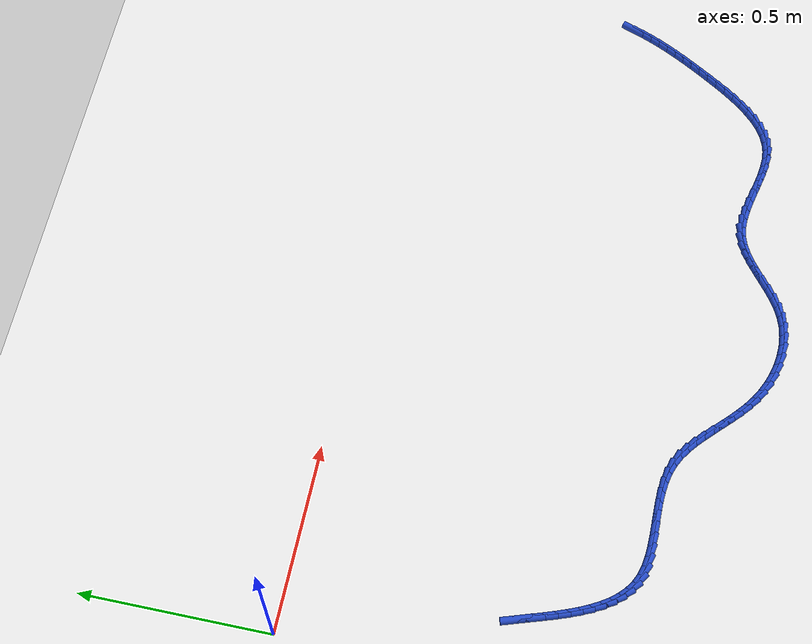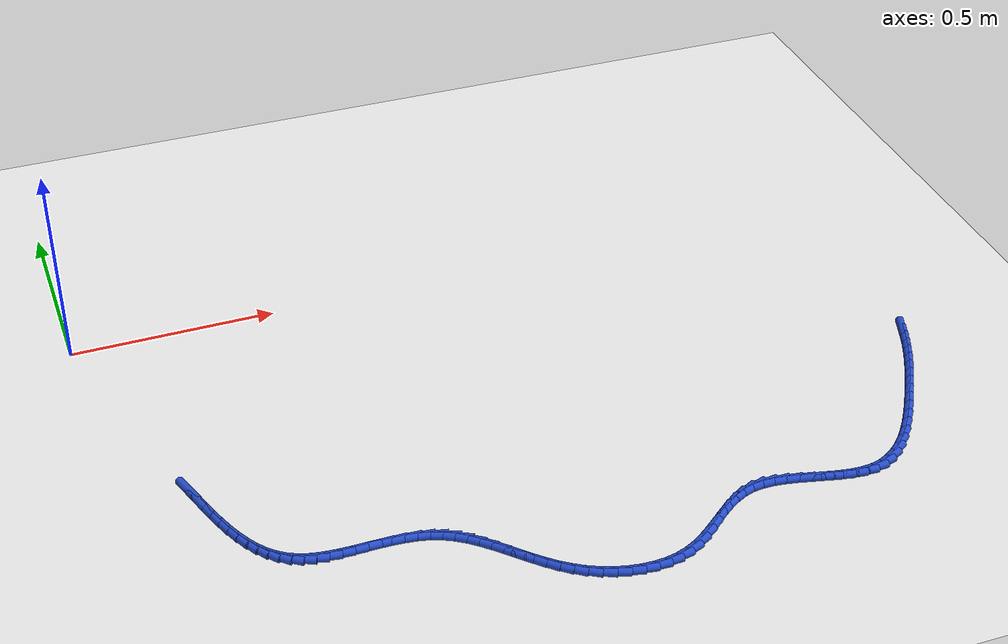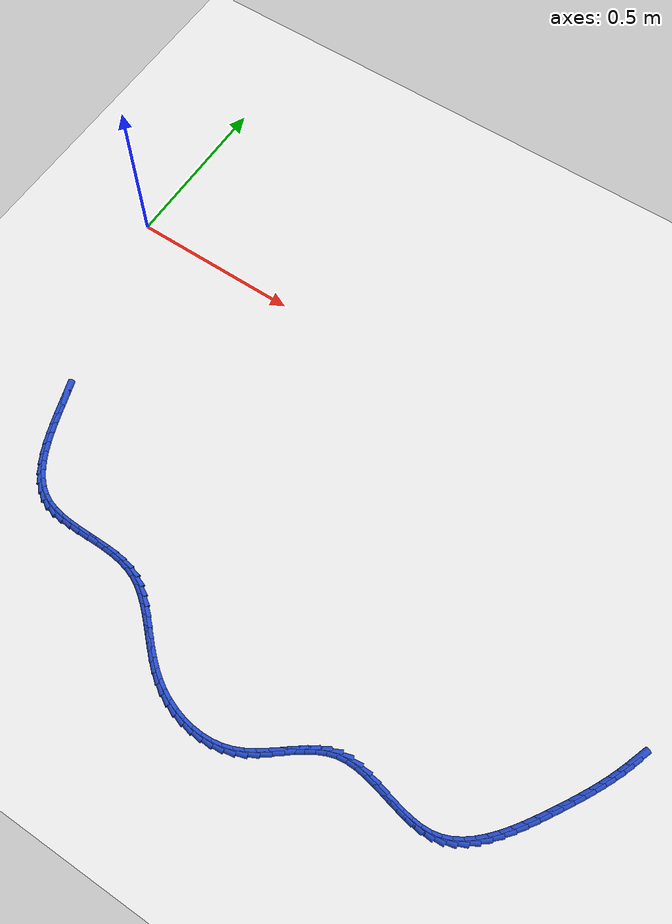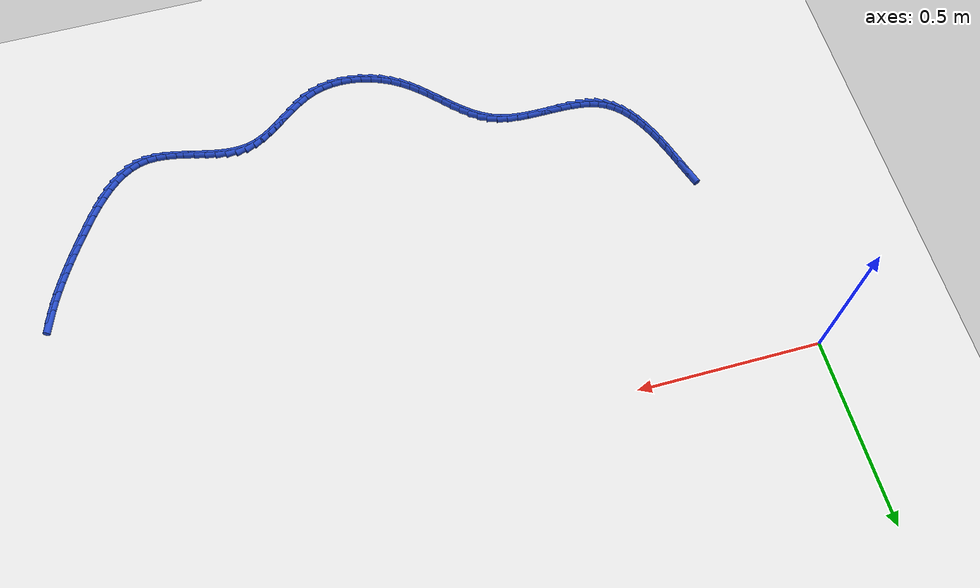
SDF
<sdf version="1.6">
 <world name="default">
  <model name="ground_plane">
   <static>1</static>
   <link name="link">
    <collision name="collision">
     <geometry><plane><normal>0 0 1</normal><size>100 100</size></plane></geometry>
     <surface><friction><ode><mu>100</mu><mu2>50</mu2></ode></friction></surface>
    </collision>
    <visual name="visual">
     <cast_shadows>0</cast_shadows>
     <geometry><plane><normal>0 0 1</normal><size>100 100</size></plane></geometry>
     <material>
      <script><uri>file://media/materials/scripts/gazebo.material</uri><name>Gazebo/WhiteGlow</name></script>
     </material>
    </visual>
   </link>
  </model>
  <model name="line">
   <link name="link_139">
    <pose>1.925622359778576 -0.5852691011964365 0.01 0 1.57 1.2184344398918956</pose>
    <collision name="collision">
     <geometry><cylinder><radius>0.01</radius><length>0.08</length></cylinder></geometry>
    </collision>
    <visual name="visual">
     <material>
      <script><name>Gazebo/Blue</name><uri>file://media/materials/scripts/gazebo.material</uri></script>
     </material>
     <geometry><cylinder><radius>0.01</radius><length>0.08</length></cylinder></geometry>
    </visual>
   </link>
   <link name="link_140">
    <pose>1.91618954484189 -0.6109221468919576 0.01 0 1.57 1.1801907414456492</pose>
    <collision name="collision">
     <geometry><cylinder><radius>0.01</radius><length>0.08</length></cylinder></geometry>
    </collision>
    <visual name="visual">
     <material>
      <script><name>Gazebo/Blue</name><uri>file://media/materials/scripts/gazebo.material</uri></script>
     </material>
     <geometry><cylinder><radius>0.01</radius><length>0.08</length></cylinder></geometry>
    </visual>
   </link>
   <link name="link_141">
    <pose>1.9057164230283405 -0.6363569766523746 0.01 0 1.57 1.14557480372661</pose>
    <collision name="collision">
     <geometry><cylinder><radius>0.01</radius><length>0.08</length></cylinder></geometry>
    </collision>
    <visual name="visual">
     <material>
      <script><name>Gazebo/Blue</name><uri>file://media/materials/scripts/gazebo.material</uri></script>
     </material>
     <geometry><cylinder><radius>0.01</radius><length>0.08</length></cylinder></geometry>
    </visual>
   </link>
   <link name="link_142">
    <pose>1.8942640450515775 -0.6616465339567439 0.01 0 1.57 1.1147285610176747</pose>
    <collision name="collision">
     <geometry><cylinder><radius>0.01</radius><length>0.08</length></cylinder></geometry>
    </collision>
    <visual name="visual">
     <material>
      <script><name>Gazebo/Blue</name><uri>file://media/materials/scripts/gazebo.material</uri></script>
     </material>
     <geometry><cylinder><radius>0.01</radius><length>0.08</length></cylinder></geometry>
    </visual>
   </link>
   <link name="link_143">
    <pose>1.8818934616252476 -0.6868637622841198 0.01 0 1.57 1.08771090647658</pose>
    <collision name="collision">
     <geometry><cylinder><radius>0.01</radius><length>0.08</length></cylinder></geometry>
    </collision>
    <visual name="visual">
     <material>
      <script><name>Gazebo/Blue</name><uri>file://media/materials/scripts/gazebo.material</uri></script>
     </material>
     <geometry><cylinder><radius>0.01</radius><length>0.08</length></cylinder></geometry>
    </visual>
   </link>
   <link name="link_144">
    <pose>1.8686657234629984 -0.7120816051135576 0.01 0 1.57 1.0645120323108932</pose>
    <collision name="collision">
     <geometry><cylinder><radius>0.01</radius><length>0.08</length></cylinder></geometry>
    </collision>
    <visual name="visual">
     <material>
      <script><name>Gazebo/Blue</name><uri>file://media/materials/scripts/gazebo.material</uri></script>
     </material>
     <geometry><cylinder><radius>0.01</radius><length>0.08</length></cylinder></geometry>
    </visual>
   </link>
   <link name="link_145">
    <pose>1.854641881278478 -0.7373730059241121 0.01 0 1.57 1.045068049238919</pose>
    <collision name="collision">
     <geometry><cylinder><radius>0.01</radius><length>0.08</length></cylinder></geometry>
    </collision>
    <visual name="visual">
     <material>
      <script><name>Gazebo/Blue</name><uri>file://media/materials/scripts/gazebo.material</uri></script>
     </material>
     <geometry><cylinder><radius>0.01</radius><length>0.08</length></cylinder></geometry>
    </visual>
   </link>
   <link name="link_146">
    <pose>1.8398829857853338 -0.7628109081948381 0.01 0 1.57 1.0292745081209902</pose>
    <collision name="collision">
     <geometry><cylinder><radius>0.01</radius><length>0.08</length></cylinder></geometry>
    </collision>
    <visual name="visual">
     <material>
      <script><name>Gazebo/Blue</name><uri>file://media/materials/scripts/gazebo.material</uri></script>
     </material>
     <geometry><cylinder><radius>0.01</radius><length>0.08</length></cylinder></geometry>
    </visual>
   </link>
   <link name="link_147">
    <pose>1.8244500876972145 -0.7884682554047917 0.01 0 1.57 1.0169614923646466</pose>
    <collision name="collision">
     <geometry><cylinder><radius>0.01</radius><length>0.08</length></cylinder></geometry>
    </collision>
    <visual name="visual">
     <material>
      <script><name>Gazebo/Blue</name><uri>file://media/materials/scripts/gazebo.material</uri></script>
     </material>
     <geometry><cylinder><radius>0.01</radius><length>0.08</length></cylinder></geometry>
    </visual>
   </link>
   <link name="link_148">
    <pose>1.808403869461189 -0.8144164661660742 0.01 0 1.57 1.0036757725175645</pose>
    <collision name="collision">
     <geometry><cylinder><radius>0.01</radius><length>0.08</length></cylinder></geometry>
    </collision>
    <visual name="visual">
     <material>
      <script><name>Gazebo/Blue</name><uri>file://media/materials/scripts/gazebo.material</uri></script>
     </material>
     <geometry><cylinder><radius>0.01</radius><length>0.08</length></cylinder></geometry>
    </visual>
   </link>
   <link name="link_149">
    <pose>1.7917613941014283 -0.840546345860081 0.01 0 1.57 0.9809185283047166</pose>
    <collision name="collision">
     <geometry><cylinder><radius>0.01</radius><length>0.08</length></cylinder></geometry>
    </collision>
    <visual name="visual">
     <material>
      <script><name>Gazebo/Blue</name><uri>file://media/materials/scripts/gazebo.material</uri></script>
     </material>
     <geometry><cylinder><radius>0.01</radius><length>0.08</length></cylinder></geometry>
    </visual>
   </link>
   <link name="link_150">
    <pose>1.7744555106060584 -0.8663999981177103 0.01 0 1.57 0.9470720037599063</pose>
    <collision name="collision">
     <geometry><cylinder><radius>0.01</radius><length>0.08</length></cylinder></geometry>
    </collision>
    <visual name="visual">
     <material>
      <script><name>Gazebo/Blue</name><uri>file://media/materials/scripts/gazebo.material</uri></script>
     </material>
     <geometry><cylinder><radius>0.01</radius><length>0.08</length></cylinder></geometry>
    </visual>
   </link>
   <link name="link_151">
    <pose>1.7564094619154242 -0.8914797511852096 0.01 0 1.57 0.9007746697013427</pose>
    <collision name="collision">
     <geometry><cylinder><radius>0.01</radius><length>0.08</length></cylinder></geometry>
    </collision>
    <visual name="visual">
     <material>
      <script><name>Gazebo/Blue</name><uri>file://media/materials/scripts/gazebo.material</uri></script>
     </material>
     <geometry><cylinder><radius>0.01</radius><length>0.08</length></cylinder></geometry>
    </visual>
   </link>
   <link name="link_152">
    <pose>1.737546490969872 -0.915287933308826 0.01 0 1.57 0.8399499661007696</pose>
    <collision name="collision">
     <geometry><cylinder><radius>0.01</radius><length>0.08</length></cylinder></geometry>
    </collision>
    <visual name="visual">
     <material>
      <script><name>Gazebo/Blue</name><uri>file://media/materials/scripts/gazebo.material</uri></script>
     </material>
     <geometry><cylinder><radius>0.01</radius><length>0.08</length></cylinder></geometry>
    </visual>
   </link>
   <link name="link_153">
    <pose>1.7177898407097476 -0.9373268727348073 0.01 0 1.57 0.7618202468319111</pose>
    <collision name="collision">
     <geometry><cylinder><radius>0.01</radius><length>0.08</length></cylinder></geometry>
    </collision>
    <visual name="visual">
     <material>
      <script><name>Gazebo/Blue</name><uri>file://media/materials/scripts/gazebo.material</uri></script>
     </material>
     <geometry><cylinder><radius>0.01</radius><length>0.08</length></cylinder></geometry>
    </visual>
   </link>
   <link name="link_154">
    <pose>1.6970627540753969 -0.957098897709401 0.01 0 1.57 0.6630969632825083</pose>
    <collision name="collision">
     <geometry><cylinder><radius>0.01</radius><length>0.08</length></cylinder></geometry>
    </collision>
    <visual name="visual">
     <material>
      <script><name>Gazebo/Blue</name><uri>file://media/materials/scripts/gazebo.material</uri></script>
     </material>
     <geometry><cylinder><radius>0.01</radius><length>0.08</length></cylinder></geometry>
    </visual>
   </link>
   <link name="link_155">
    <pose>1.6752884740071634 -0.9741063364788538 0.01 0 1.57 0.5406199306914969</pose>
    <collision name="collision">
     <geometry><cylinder><radius>0.01</radius><length>0.08</length></cylinder></geometry>
    </collision>
    <visual name="visual">
     <material>
      <script><name>Gazebo/Blue</name><uri>file://media/materials/scripts/gazebo.material</uri></script>
     </material>
     <geometry><cylinder><radius>0.01</radius><length>0.08</length></cylinder></geometry>
    </visual>
   </link>
   <link name="link_156">
    <pose>1.652390243445395 -0.9878515172894133 0.01 0 1.57 0.3928104362531148</pose>
    <collision name="collision">
     <geometry><cylinder><radius>0.01</radius><length>0.08</length></cylinder></geometry>
    </collision>
    <visual name="visual">
     <material>
      <script><name>Gazebo/Blue</name><uri>file://media/materials/scripts/gazebo.material</uri></script>
     </material>
     <geometry><cylinder><radius>0.01</radius><length>0.08</length></cylinder></geometry>
    </visual>
   </link>
   <link name="link_157">
    <pose>1.6282913053304364 -0.997836768387327 0.01 0 1.57 0.2221779125255363</pose>
    <collision name="collision">
     <geometry><cylinder><radius>0.01</radius><length>0.08</length></cylinder></geometry>
    </collision>
    <visual name="visual">
     <material>
      <script><name>Gazebo/Blue</name><uri>file://media/materials/scripts/gazebo.material</uri></script>
     </material>
     <geometry><cylinder><radius>0.01</radius><length>0.08</length></cylinder></geometry>
    </visual>
   </link>
   <link name="link_158">
    <pose>1.6029160341459052 -1.003569228906447 0.01 0 1.57 0.0546289391562465</pose>
    <collision name="collision">
     <geometry><cylinder><radius>0.01</radius><length>0.08</length></cylinder></geometry>
    </collision>
    <visual name="visual">
     <material>
      <script><name>Gazebo/Blue</name><uri>file://media/materials/scripts/gazebo.material</uri></script>
     </material>
     <geometry><cylinder><radius>0.01</radius><length>0.08</length></cylinder></geometry>
    </visual>
   </link>
   <link name="link_159">
    <pose>1.576299044112488 -1.0050247350228063 0.01 0 1.57 -0.07194347540569326</pose>
    <collision name="collision">
     <geometry><cylinder><radius>0.01</radius><length>0.08</length></cylinder></geometry>
    </collision>
    <visual name="visual">
     <material>
      <script><name>Gazebo/Blue</name><uri>file://media/materials/scripts/gazebo.material</uri></script>
     </material>
     <geometry><cylinder><radius>0.01</radius><length>0.08</length></cylinder></geometry>
    </visual>
   </link>
   <link name="link_160">
    <pose>1.5486760212433566 -1.0030340029848093 0.01 0 1.57 -0.1578245076097073</pose>
    <collision name="collision">
     <geometry><cylinder><radius>0.01</radius><length>0.08</length></cylinder></geometry>
    </collision>
    <visual name="visual">
     <material>
      <script><name>Gazebo/Blue</name><uri>file://media/materials/scripts/gazebo.material</uri></script>
     </material>
     <geometry><cylinder><radius>0.01</radius><length>0.08</length></cylinder></geometry>
    </visual>
   </link>
   <link name="link_161">
    <pose>1.5203040331130981 -0.9985186552318472 0.01 0 1.57 -0.2088803309781052</pose>
    <collision name="collision">
     <geometry><cylinder><radius>0.01</radius><length>0.08</length></cylinder></geometry>
    </collision>
    <visual name="visual">
     <material>
      <script><name>Gazebo/Blue</name><uri>file://media/materials/scripts/gazebo.material</uri></script>
     </material>
     <geometry><cylinder><radius>0.01</radius><length>0.08</length></cylinder></geometry>
    </visual>
   </link>
   <link name="link_162">
    <pose>1.4914401472962995 -0.9924003142033098 0.01 0 1.57 -0.22955819621003054</pose>
    <collision name="collision">
     <geometry><cylinder><radius>0.01</radius><length>0.08</length></cylinder></geometry>
    </collision>
    <visual name="visual">
     <material>
      <script><name>Gazebo/Blue</name><uri>file://media/materials/scripts/gazebo.material</uri></script>
     </material>
     <geometry><cylinder><radius>0.01</radius><length>0.08</length></cylinder></geometry>
    </visual>
   </link>
   <link name="link_163">
    <pose>1.4623414313675471 -0.9856006023385873 0.01 0 1.57 -0.2218791321618288</pose>
    <collision name="collision">
     <geometry><cylinder><radius>0.01</radius><length>0.08</length></cylinder></geometry>
    </collision>
    <visual name="visual">
     <material>
      <script><name>Gazebo/Blue</name><uri>file://media/materials/scripts/gazebo.material</uri></script>
     </material>
     <geometry><cylinder><radius>0.01</radius><length>0.08</length></cylinder></geometry>
    </visual>
   </link>
   <link name="link_164">
    <pose>1.4332649529014285 -0.9790411420770699 0.01 0 1.57 -0.18528475481846854</pose>
    <collision name="collision">
     <geometry><cylinder><radius>0.01</radius><length>0.08</length></cylinder></geometry>
    </collision>
    <visual name="visual">
     <material>
      <script><name>Gazebo/Blue</name><uri>file://media/materials/scripts/gazebo.material</uri></script>
     </material>
     <geometry><cylinder><radius>0.01</radius><length>0.08</length></cylinder></geometry>
    </visual>
   </link>
   <link name="link_165">
    <pose>1.4044677794725304 -0.9736435558581483 0.01 0 1.57 -0.11673491910925098</pose>
    <collision name="collision">
     <geometry><cylinder><radius>0.01</radius><length>0.08</length></cylinder></geometry>
    </collision>
    <visual name="visual">
     <material>
      <script><name>Gazebo/Blue</name><uri>file://media/materials/scripts/gazebo.material</uri></script>
     </material>
     <geometry><cylinder><radius>0.01</radius><length>0.08</length></cylinder></geometry>
    </visual>
   </link>
   <link name="link_166">
    <pose>1.3762069786554392 -0.9703294661212124 0.01 0 1.57 -0.011248178851903715</pose>
    <collision name="collision">
     <geometry><cylinder><radius>0.01</radius><length>0.08</length></cylinder></geometry>
    </collision>
    <visual name="visual">
     <material>
      <script><name>Gazebo/Blue</name><uri>file://media/materials/scripts/gazebo.material</uri></script>
     </material>
     <geometry><cylinder><radius>0.01</radius><length>0.08</length></cylinder></geometry>
    </visual>
   </link>
   <link name="link_167">
    <pose>1.3487396180247413 -0.9700204953056522 0.01 0 1.57 0.13610260505003743</pose>
    <collision name="collision">
     <geometry><cylinder><radius>0.01</radius><length>0.08</length></cylinder></geometry>
    </collision>
    <visual name="visual">
     <material>
      <script><name>Gazebo/Blue</name><uri>file://media/materials/scripts/gazebo.material</uri></script>
     </material>
     <geometry><cylinder><radius>0.01</radius><length>0.08</length></cylinder></geometry>
    </visual>
   </link>
   <link name="link_168">
    <pose>1.3223227645823081 -0.9736382639292567 0.01 0 1.57 0.31217496440135534</pose>
    <collision name="collision">
     <geometry><cylinder><radius>0.01</radius><length>0.08</length></cylinder></geometry>
    </collision>
    <visual name="visual">
     <material>
      <script><name>Gazebo/Blue</name><uri>file://media/materials/scripts/gazebo.material</uri></script>
     </material>
     <geometry><cylinder><radius>0.01</radius><length>0.08</length></cylinder></geometry>
    </visual>
   </link>
   <link name="link_169">
    <pose>1.2971148771551892 -0.9817735378230558 0.01 0 1.57 0.4598043648778008</pose>
    <collision name="collision">
     <geometry><cylinder><radius>0.01</radius><length>0.08</length></cylinder></geometry>
    </collision>
    <visual name="visual">
     <material>
      <script><name>Gazebo/Blue</name><uri>file://media/materials/scripts/gazebo.material</uri></script>
     </material>
     <geometry><cylinder><radius>0.01</radius><length>0.08</length></cylinder></geometry>
    </visual>
   </link>
   <link name="link_170">
    <pose>1.2729010491028117 -0.9937643498163952 0.01 0 1.57 0.5642664960544764</pose>
    <collision name="collision">
     <geometry><cylinder><radius>0.01</radius><length>0.08</length></cylinder></geometry>
    </collision>
    <visual name="visual">
     <material>
      <script><name>Gazebo/Blue</name><uri>file://media/materials/scripts/gazebo.material</uri></script>
     </material>
     <geometry><cylinder><radius>0.01</radius><length>0.08</length></cylinder></geometry>
    </visual>
   </link>
   <link name="link_171">
    <pose>1.249378020776006 -1.008652286657579 0.01 0 1.57 0.6288199994018576</pose>
    <collision name="collision">
     <geometry><cylinder><radius>0.01</radius><length>0.08</length></cylinder></geometry>
    </collision>
    <visual name="visual">
     <material>
      <script><name>Gazebo/Blue</name><uri>file://media/materials/scripts/gazebo.material</uri></script>
     </material>
     <geometry><cylinder><radius>0.01</radius><length>0.08</length></cylinder></geometry>
    </visual>
   </link>
   <link name="link_172">
    <pose>1.2262425325255986 -1.0254789350949112 0.01 0 1.57 0.6577432639844585</pose>
    <collision name="collision">
     <geometry><cylinder><radius>0.01</radius><length>0.08</length></cylinder></geometry>
    </collision>
    <visual name="visual">
     <material>
      <script><name>Gazebo/Blue</name><uri>file://media/materials/scripts/gazebo.material</uri></script>
     </material>
     <geometry><cylinder><radius>0.01</radius><length>0.08</length></cylinder></geometry>
    </visual>
   </link>
   <link name="link_173">
    <pose>1.203191324702418 -1.043285881876697 0.01 0 1.57 0.6537674783909213</pose>
    <collision name="collision">
     <geometry><cylinder><radius>0.01</radius><length>0.08</length></cylinder></geometry>
    </collision>
    <visual name="visual">
     <material>
      <script><name>Gazebo/Blue</name><uri>file://media/materials/scripts/gazebo.material</uri></script>
     </material>
     <geometry><cylinder><radius>0.01</radius><length>0.08</length></cylinder></geometry>
    </visual>
   </link>
   <link name="link_174">
    <pose>1.1799211376572927 -1.061114713751241 0.01 0 1.57 0.617396986445951</pose>
    <collision name="collision">
     <geometry><cylinder><radius>0.01</radius><length>0.08</length></cylinder></geometry>
    </collision>
    <visual name="visual">
     <material>
      <script><name>Gazebo/Blue</name><uri>file://media/materials/scripts/gazebo.material</uri></script>
     </material>
     <geometry><cylinder><radius>0.01</radius><length>0.08</length></cylinder></geometry>
    </visual>
   </link>
   <link name="link_175">
    <pose>1.1561287117410513 -1.0780070174668477 0.01 0 1.57 0.5471603946825171</pose>
    <collision name="collision">
     <geometry><cylinder><radius>0.01</radius><length>0.08</length></cylinder></geometry>
    </collision>
    <visual name="visual">
     <material>
      <script><name>Gazebo/Blue</name><uri>file://media/materials/scripts/gazebo.material</uri></script>
     </material>
     <geometry><cylinder><radius>0.01</radius><length>0.08</length></cylinder></geometry>
    </visual>
   </link>
   <link name="link_176">
    <pose>1.131510787304521 -1.0930043797718216 0.01 0 1.57 0.4407319113774347</pose>
    <collision name="collision">
     <geometry><cylinder><radius>0.01</radius><length>0.08</length></cylinder></geometry>
    </collision>
    <visual name="visual">
     <material>
      <script><name>Gazebo/Blue</name><uri>file://media/materials/scripts/gazebo.material</uri></script>
     </material>
     <geometry><cylinder><radius>0.01</radius><length>0.08</length></cylinder></geometry>
    </visual>
   </link>
   <link name="link_177">
    <pose>1.1057641313842084 -1.10514843276791 0.01 0 1.57 0.30644796824672654</pose>
    <collision name="collision">
     <geometry><cylinder><radius>0.01</radius><length>0.08</length></cylinder></geometry>
    </collision>
    <visual name="visual">
     <material>
      <script><name>Gazebo/Blue</name><uri>file://media/materials/scripts/gazebo.material</uri></script>
     </material>
     <geometry><cylinder><radius>0.01</radius><length>0.08</length></cylinder></geometry>
    </visual>
   </link>
   <link name="link_178">
    <pose>1.0787181324410902 -1.1137062042919634 0.01 0 1.57 0.175798809517228</pose>
    <collision name="collision">
     <geometry><cylinder><radius>0.01</radius><length>0.08</length></cylinder></geometry>
    </collision>
    <visual name="visual">
     <material>
      <script><name>Gazebo/Blue</name><uri>file://media/materials/scripts/gazebo.material</uri></script>
     </material>
     <geometry><cylinder><radius>0.01</radius><length>0.08</length></cylinder></geometry>
    </visual>
   </link>
   <link name="link_179">
    <pose>1.0506426507534696 -1.118693322713946 0.01 0 1.57 0.055166639690354506</pose>
    <collision name="collision">
     <geometry><cylinder><radius>0.01</radius><length>0.08</length></cylinder></geometry>
    </collision>
    <visual name="visual">
     <material>
      <script><name>Gazebo/Blue</name><uri>file://media/materials/scripts/gazebo.material</uri></script>
     </material>
     <geometry><cylinder><radius>0.01</radius><length>0.08</length></cylinder></geometry>
    </visual>
   </link>
   <link name="link_180">
    <pose>1.021898873812834 -1.1202806308756377 0.01 0 1.57 -0.056449748322548794</pose>
    <collision name="collision">
     <geometry><cylinder><radius>0.01</radius><length>0.08</length></cylinder></geometry>
    </collision>
    <visual name="visual">
     <material>
      <script><name>Gazebo/Blue</name><uri>file://media/materials/scripts/gazebo.material</uri></script>
     </material>
     <geometry><cylinder><radius>0.01</radius><length>0.08</length></cylinder></geometry>
    </visual>
   </link>
   <link name="link_181">
    <pose>0.9928479891106696 -1.1186389716188183 0.01 0 1.57 -0.16068206714853325</pose>
    <collision name="collision">
     <geometry><cylinder><radius>0.01</radius><length>0.08</length></cylinder></geometry>
    </collision>
    <visual name="visual">
     <material>
      <script><name>Gazebo/Blue</name><uri>file://media/materials/scripts/gazebo.material</uri></script>
     </material>
     <geometry><cylinder><radius>0.01</radius><length>0.08</length></cylinder></geometry>
    </visual>
   </link>
   <link name="link_182">
    <pose>0.9638511841384638 -1.1139391877852678 0.01 0 1.57 -0.25946930583980976</pose>
    <collision name="collision">
     <geometry><cylinder><radius>0.01</radius><length>0.08</length></cylinder></geometry>
    </collision>
    <visual name="visual">
     <material>
      <script><name>Gazebo/Blue</name><uri>file://media/materials/scripts/gazebo.material</uri></script>
     </material>
     <geometry><cylinder><radius>0.01</radius><length>0.08</length></cylinder></geometry>
    </visual>
   </link>
   <link name="link_183">
    <pose>0.9352696463877039 -1.106352122216767 0.01 0 1.57 -0.35487406938376614</pose>
    <collision name="collision">
     <geometry><cylinder><radius>0.01</radius><length>0.08</length></cylinder></geometry>
    </collision>
    <visual name="visual">
     <material>
      <script><name>Gazebo/Blue</name><uri>file://media/materials/scripts/gazebo.material</uri></script>
     </material>
     <geometry><cylinder><radius>0.01</radius><length>0.08</length></cylinder></geometry>
    </visual>
   </link>
   <link name="link_184">
    <pose>0.9074645633498764 -1.096048617755095 0.01 0 1.57 -0.4490040276553644</pose>
    <collision name="collision">
     <geometry><cylinder><radius>0.01</radius><length>0.08</length></cylinder></geometry>
    </collision>
    <visual name="visual">
     <material>
      <script><name>Gazebo/Blue</name><uri>file://media/materials/scripts/gazebo.material</uri></script>
     </material>
     <geometry><cylinder><radius>0.01</radius><length>0.08</length></cylinder></geometry>
    </visual>
   </link>
   <link name="link_185">
    <pose>0.880797122516468 -1.0831995172420323 0.01 0 1.57 -0.5437257470510903</pose>
    <collision name="collision">
     <geometry><cylinder><radius>0.01</radius><length>0.08</length></cylinder></geometry>
    </collision>
    <visual name="visual">
     <material>
      <script><name>Gazebo/Blue</name><uri>file://media/materials/scripts/gazebo.material</uri></script>
     </material>
     <geometry><cylinder><radius>0.01</radius><length>0.08</length></cylinder></geometry>
    </visual>
   </link>
   <link name="link_186">
    <pose>0.8556202152256834 -1.067979939577773 0.01 0 1.57 -0.6311048982848416</pose>
    <collision name="collision">
     <geometry><cylinder><radius>0.01</radius><length>0.08</length></cylinder></geometry>
    </collision>
    <visual name="visual">
     <material>
      <script><name>Gazebo/Blue</name><uri>file://media/materials/scripts/gazebo.material</uri></script>
     </material>
     <geometry><cylinder><radius>0.01</radius><length>0.08</length></cylinder></geometry>
    </visual>
   </link>
   <link name="link_187">
    <pose>0.8319957509642737 -1.0507149834605773 0.01 0 1.57 -0.6988651305608219</pose>
    <collision name="collision">
     <geometry><cylinder><radius>0.01</radius><length>0.08</length></cylinder></geometry>
    </collision>
    <visual name="visual">
     <material>
      <script><name>Gazebo/Blue</name><uri>file://media/materials/scripts/gazebo.material</uri></script>
     </material>
     <geometry><cylinder><radius>0.01</radius><length>0.08</length></cylinder></geometry>
    </visual>
   </link>
   <link name="link_188">
    <pose>0.8096249357624393 -1.0319156637594413 0.01 0 1.57 -0.745968399522468</pose>
    <collision name="collision">
     <geometry><cylinder><radius>0.01</radius><length>0.08</length></cylinder></geometry>
    </collision>
    <visual name="visual">
     <material>
      <script><name>Gazebo/Blue</name><uri>file://media/materials/scripts/gazebo.material</uri></script>
     </material>
     <geometry><cylinder><radius>0.01</radius><length>0.08</length></cylinder></geometry>
    </visual>
   </link>
   <link name="link_189">
    <pose>0.788186533190502 -1.0121045627850542 0.01 0 1.57 -0.7725868505457794</pose>
    <collision name="collision">
     <geometry><cylinder><radius>0.01</radius><length>0.08</length></cylinder></geometry>
    </collision>
    <visual name="visual">
     <material>
      <script><name>Gazebo/Blue</name><uri>file://media/materials/scripts/gazebo.material</uri></script>
     </material>
     <geometry><cylinder><radius>0.01</radius><length>0.08</length></cylinder></geometry>
    </visual>
   </link>
   <link name="link_190">
    <pose>0.7673593068187848 -0.9918042628481071 0.01 0 1.57 -0.7787722269859619</pose>
    <collision name="collision">
     <geometry><cylinder><radius>0.01</radius><length>0.08</length></cylinder></geometry>
    </collision>
    <visual name="visual">
     <material>
      <script><name>Gazebo/Blue</name><uri>file://media/materials/scripts/gazebo.material</uri></script>
     </material>
     <geometry><cylinder><radius>0.01</radius><length>0.08</length></cylinder></geometry>
    </visual>
   </link>
   <link name="link_191">
    <pose>0.7468220202176084 -0.9715373462592883 0.01 0 1.57 -0.764109367975256</pose>
    <collision name="collision">
     <geometry><cylinder><radius>0.01</radius><length>0.08</length></cylinder></geometry>
    </collision>
    <visual name="visual">
     <material>
      <script><name>Gazebo/Blue</name><uri>file://media/materials/scripts/gazebo.material</uri></script>
     </material>
     <geometry><cylinder><radius>0.01</radius><length>0.08</length></cylinder></geometry>
    </visual>
   </link>
   <link name="link_192">
    <pose>0.7262534369572948 -0.951826395329288 0.01 0 1.57 -0.7275989034517705</pose>
    <collision name="collision">
     <geometry><cylinder><radius>0.01</radius><length>0.08</length></cylinder></geometry>
    </collision>
    <visual name="visual">
     <material>
      <script><name>Gazebo/Blue</name><uri>file://media/materials/scripts/gazebo.material</uri></script>
     </material>
     <geometry><cylinder><radius>0.01</radius><length>0.08</length></cylinder></geometry>
    </visual>
   </link>
   <link name="link_193">
    <pose>0.7053323206081672 -0.9331939923687971 0.01 0 1.57 -0.6677950947967563</pose>
    <collision name="collision">
     <geometry><cylinder><radius>0.01</radius><length>0.08</length></cylinder></geometry>
    </collision>
    <visual name="visual">
     <material>
      <script><name>Gazebo/Blue</name><uri>file://media/materials/scripts/gazebo.material</uri></script>
     </material>
     <geometry><cylinder><radius>0.01</radius><length>0.08</length></cylinder></geometry>
    </visual>
   </link>
   <link name="link_194">
    <pose>0.6837374347405465 -0.9161627196885042 0.01 0 1.57 -0.5833184719949395</pose>
    <collision name="collision">
     <geometry><cylinder><radius>0.01</radius><length>0.08</length></cylinder></geometry>
    </collision>
    <visual name="visual">
     <material>
      <script><name>Gazebo/Blue</name><uri>file://media/materials/scripts/gazebo.material</uri></script>
     </material>
     <geometry><cylinder><radius>0.01</radius><length>0.08</length></cylinder></geometry>
    </visual>
   </link>
   <link name="link_195">
    <pose>0.6611475429247555 -0.9012551595991 0.01 0 1.57 -0.4739079435428198</pose>
    <collision name="collision">
     <geometry><cylinder><radius>0.01</radius><length>0.08</length></cylinder></geometry>
    </collision>
    <visual name="visual">
     <material>
      <script><name>Gazebo/Blue</name><uri>file://media/materials/scripts/gazebo.material</uri></script>
     </material>
     <geometry><cylinder><radius>0.01</radius><length>0.08</length></cylinder></geometry>
    </visual>
   </link>
   <link name="link_196">
    <pose>0.6372414087311156 -0.8889938944112736 0.01 0 1.57 -0.3426684048034639</pose>
    <collision name="collision">
     <geometry><cylinder><radius>0.01</radius><length>0.08</length></cylinder></geometry>
    </collision>
    <visual name="visual">
     <material>
      <script><name>Gazebo/Blue</name><uri>file://media/materials/scripts/gazebo.material</uri></script>
     </material>
     <geometry><cylinder><radius>0.01</radius><length>0.08</length></cylinder></geometry>
    </visual>
   </link>
   <link name="link_197">
    <pose>0.6117076761400044 -0.8798849389798609 0.01 0 1.57 -0.21641159985586284</pose>
    <collision name="collision">
     <geometry><cylinder><radius>0.01</radius><length>0.08</length></cylinder></geometry>
    </collision>
    <visual name="visual">
     <material>
      <script><name>Gazebo/Blue</name><uri>file://media/materials/scripts/gazebo.material</uri></script>
     </material>
     <geometry><cylinder><radius>0.01</radius><length>0.08</length></cylinder></geometry>
    </visual>
   </link>
   <link name="link_198">
    <pose>0.5845457288452693 -0.8739132603027395 0.01 0 1.57 -0.12121972046259503</pose>
    <collision name="collision">
     <geometry><cylinder><radius>0.01</radius><length>0.08</length></cylinder></geometry>
    </collision>
    <visual name="visual">
     <material>
      <script><name>Gazebo/Blue</name><uri>file://media/materials/scripts/gazebo.material</uri></script>
     </material>
     <geometry><cylinder><radius>0.01</radius><length>0.08</length></cylinder></geometry>
    </visual>
   </link>
   <link name="link_199">
    <pose>0.5561206599535593 -0.8704506044164843 0.01 0 1.57 -0.05512923410943481</pose>
    <collision name="collision">
     <geometry><cylinder><radius>0.01</radius><length>0.08</length></cylinder></geometry>
    </collision>
    <visual name="visual">
     <material>
      <script><name>Gazebo/Blue</name><uri>file://media/materials/scripts/gazebo.material</uri></script>
     </material>
     <geometry><cylinder><radius>0.01</radius><length>0.08</length></cylinder></geometry>
    </visual>
   </link>
   <link name="link_200">
    <pose>0.5268185284376146 -0.8688335618267785 0.01 0 1.57 -0.014594231599161286</pose>
    <collision name="collision">
     <geometry><cylinder><radius>0.01</radius><length>0.08</length></cylinder></geometry>
    </collision>
    <visual name="visual">
     <material>
      <script><name>Gazebo/Blue</name><uri>file://media/materials/scripts/gazebo.material</uri></script>
     </material>
     <geometry><cylinder><radius>0.01</radius><length>0.08</length></cylinder></geometry>
    </visual>
   </link>
   <link name="link_201">
    <pose>0.497025393270177 -0.8683987230393057 0.01 0 1.57 0.002808049888388858</pose>
    <collision name="collision">
     <geometry><cylinder><radius>0.01</radius><length>0.08</length></cylinder></geometry>
    </collision>
    <visual name="visual">
     <material>
      <script><name>Gazebo/Blue</name><uri>file://media/materials/scripts/gazebo.material</uri></script>
     </material>
     <geometry><cylinder><radius>0.01</radius><length>0.08</length></cylinder></geometry>
    </visual>
   </link>
   <link name="link_202">
    <pose>0.4671273134239864 -0.868482678559748 0.01 0 1.57 -0.002048136262721767</pose>
    <collision name="collision">
     <geometry><cylinder><radius>0.01</radius><length>0.08</length></cylinder></geometry>
    </collision>
    <visual name="visual">
     <material>
      <script><name>Gazebo/Blue</name><uri>file://media/materials/scripts/gazebo.material</uri></script>
     </material>
     <geometry><cylinder><radius>0.01</radius><length>0.08</length></cylinder></geometry>
    </visual>
   </link>
   <link name="link_203">
    <pose>0.43751034787178344 -0.8684220188937891 0.01 0 1.57 -0.02999758199248445</pose>
    <collision name="collision">
     <geometry><cylinder><radius>0.01</radius><length>0.08</length></cylinder></geometry>
    </collision>
    <visual name="visual">
     <material>
      <script><name>Gazebo/Blue</name><uri>file://media/materials/scripts/gazebo.material</uri></script>
     </material>
     <geometry><cylinder><radius>0.01</radius><length>0.08</length></cylinder></geometry>
    </visual>
   </link>
   <link name="link_204">
    <pose>0.40856055558630877 -0.8675533345471116 0.01 0 1.57 -0.0836896235605142</pose>
    <collision name="collision">
     <geometry><cylinder><radius>0.01</radius><length>0.08</length></cylinder></geometry>
    </collision>
    <visual name="visual">
     <material>
      <script><name>Gazebo/Blue</name><uri>file://media/materials/scripts/gazebo.material</uri></script>
     </material>
     <geometry><cylinder><radius>0.01</radius><length>0.08</length></cylinder></geometry>
    </visual>
   </link>
   <link name="link_205">
    <pose>0.38066399554030295 -0.865213216025399 0.01 0 1.57 -0.16755345000573352</pose>
    <collision name="collision">
     <geometry><cylinder><radius>0.01</radius><length>0.08</length></cylinder></geometry>
    </collision>
    <visual name="visual">
     <material>
      <script><name>Gazebo/Blue</name><uri>file://media/materials/scripts/gazebo.material</uri></script>
     </material>
     <geometry><cylinder><radius>0.01</radius><length>0.08</length></cylinder></geometry>
    </visual>
   </link>
   <link name="link_206">
    <pose>0.35420672670650655 -0.8607382538343339 0.01 0 1.57 -0.28711726974735813</pose>
    <collision name="collision">
     <geometry><cylinder><radius>0.01</radius><length>0.08</length></cylinder></geometry>
    </collision>
    <visual name="visual">
     <material>
      <script><name>Gazebo/Blue</name><uri>file://media/materials/scripts/gazebo.material</uri></script>
     </material>
     <geometry><cylinder><radius>0.01</radius><length>0.08</length></cylinder></geometry>
    </visual>
   </link>
   <link name="link_207">
    <pose>0.3295748080576602 -0.8534650384795998 0.01 0 1.57 -0.4440435481897669</pose>
    <collision name="collision">
     <geometry><cylinder><radius>0.01</radius><length>0.08</length></cylinder></geometry>
    </collision>
    <visual name="visual">
     <material>
      <script><name>Gazebo/Blue</name><uri>file://media/materials/scripts/gazebo.material</uri></script>
     </material>
     <geometry><cylinder><radius>0.01</radius><length>0.08</length></cylinder></geometry>
    </visual>
   </link>
   <link name="link_208">
    <pose>0.3071224016852451 -0.842783761643926 0.01 0 1.57 -0.6084357173450516</pose>
    <collision name="collision">
     <geometry><cylinder><radius>0.01</radius><length>0.08</length></cylinder></geometry>
    </collision>
    <visual name="visual">
     <material>
      <script><name>Gazebo/Blue</name><uri>file://media/materials/scripts/gazebo.material</uri></script>
     </material>
     <geometry><cylinder><radius>0.01</radius><length>0.08</length></cylinder></geometry>
    </visual>
   </link>
   <link name="link_209">
    <pose>0.2868570638724186 -0.82866706942453 0.01 0 1.57 -0.7555181285759296</pose>
    <collision name="collision">
     <geometry><cylinder><radius>0.01</radius><length>0.08</length></cylinder></geometry>
    </collision>
    <visual name="visual">
     <material>
      <script><name>Gazebo/Blue</name><uri>file://media/materials/scripts/gazebo.material</uri></script>
     </material>
     <geometry><cylinder><radius>0.01</radius><length>0.08</length></cylinder></geometry>
    </visual>
   </link>
   <link name="link_210">
    <pose>0.2685737115889267 -0.8114449380724041 0.01 0 1.57 -0.8805265462070068</pose>
    <collision name="collision">
     <geometry><cylinder><radius>0.01</radius><length>0.08</length></cylinder></geometry>
    </collision>
    <visual name="visual">
     <material>
      <script><name>Gazebo/Blue</name><uri>file://media/materials/scripts/gazebo.material</uri></script>
     </material>
     <geometry><cylinder><radius>0.01</radius><length>0.08</length></cylinder></geometry>
    </visual>
   </link>
   <link name="link_211">
    <pose>0.25206417989424257 -0.7914525228407424 0.01 0 1.57 -0.9830351504750234</pose>
    <collision name="collision">
     <geometry><cylinder><radius>0.01</radius><length>0.08</length></cylinder></geometry>
    </collision>
    <visual name="visual">
     <material>
      <script><name>Gazebo/Blue</name><uri>file://media/materials/scripts/gazebo.material</uri></script>
     </material>
     <geometry><cylinder><radius>0.01</radius><length>0.08</length></cylinder></geometry>
    </visual>
   </link>
   <link name="link_212">
    <pose>0.23712030384783914 -0.769024978982738 0.01 0 1.57 -1.0649452882569528</pose>
    <collision name="collision">
     <geometry><cylinder><radius>0.01</radius><length>0.08</length></cylinder></geometry>
    </collision>
    <visual name="visual">
     <material>
      <script><name>Gazebo/Blue</name><uri>file://media/materials/scripts/gazebo.material</uri></script>
     </material>
     <geometry><cylinder><radius>0.01</radius><length>0.08</length></cylinder></geometry>
    </visual>
   </link>
   <link name="link_213">
    <pose>0.22353391850918938 -0.7444974617515835 0.01 0 1.57 -1.1289566790201142</pose>
    <collision name="collision">
     <geometry><cylinder><radius>0.01</radius><length>0.08</length></cylinder></geometry>
    </collision>
    <visual name="visual">
     <material>
      <script><name>Gazebo/Blue</name><uri>file://media/materials/scripts/gazebo.material</uri></script>
     </material>
     <geometry><cylinder><radius>0.01</radius><length>0.08</length></cylinder></geometry>
    </visual>
   </link>
   <link name="link_214">
    <pose>0.21109685893776636 -0.7182051264004732 0.01 0 1.57 -1.1776948560886524</pose>
    <collision name="collision">
     <geometry><cylinder><radius>0.01</radius><length>0.08</length></cylinder></geometry>
    </collision>
    <visual name="visual">
     <material>
      <script><name>Gazebo/Blue</name><uri>file://media/materials/scripts/gazebo.material</uri></script>
     </material>
     <geometry><cylinder><radius>0.01</radius><length>0.08</length></cylinder></geometry>
    </visual>
   </link>
   <link name="link_215">
    <pose>0.19960096019304285 -0.6904831281825989 0.01 0 1.57 -1.2133432633671577</pose>
    <collision name="collision">
     <geometry><cylinder><radius>0.01</radius><length>0.08</length></cylinder></geometry>
    </collision>
    <visual name="visual">
     <material>
      <script><name>Gazebo/Blue</name><uri>file://media/materials/scripts/gazebo.material</uri></script>
     </material>
     <geometry><cylinder><radius>0.01</radius><length>0.08</length></cylinder></geometry>
    </visual>
   </link>
   <link name="link_216">
    <pose>0.18883805733449238 -0.6616666223511559 0.01 0 1.57 -1.2375437271290501</pose>
    <collision name="collision">
     <geometry><cylinder><radius>0.01</radius><length>0.08</length></cylinder></geometry>
    </collision>
    <visual name="visual">
     <material>
      <script><name>Gazebo/Blue</name><uri>file://media/materials/scripts/gazebo.material</uri></script>
     </material>
     <geometry><cylinder><radius>0.01</radius><length>0.08</length></cylinder></geometry>
    </visual>
   </link>
   <link name="link_217">
    <pose>0.1785999854215878 -0.6320907641593368 0.01 0 1.57 -1.2514059948553518</pose>
    <collision name="collision">
     <geometry><cylinder><radius>0.01</radius><length>0.08</length></cylinder></geometry>
    </collision>
    <visual name="visual">
     <material>
      <script><name>Gazebo/Blue</name><uri>file://media/materials/scripts/gazebo.material</uri></script>
     </material>
     <geometry><cylinder><radius>0.01</radius><length>0.08</length></cylinder></geometry>
    </visual>
   </link>
   <link name="link_218">
    <pose>0.16867857951380202 -0.6020907088603343 0.01 0 1.57 -1.2555442955029397</pose>
    <collision name="collision">
     <geometry><cylinder><radius>0.01</radius><length>0.08</length></cylinder></geometry>
    </collision>
    <visual name="visual">
     <material>
      <script><name>Gazebo/Blue</name><uri>file://media/materials/scripts/gazebo.material</uri></script>
     </material>
     <geometry><cylinder><radius>0.01</radius><length>0.08</length></cylinder></geometry>
    </visual>
   </link>
   <link name="link_219">
    <pose>0.15886567467060814 -0.5720016117073424 0.01 0 1.57 -1.2501044605306315</pose>
    <collision name="collision">
     <geometry><cylinder><radius>0.01</radius><length>0.08</length></cylinder></geometry>
    </collision>
    <visual name="visual">
     <material>
      <script><name>Gazebo/Blue</name><uri>file://media/materials/scripts/gazebo.material</uri></script>
     </material>
     <geometry><cylinder><radius>0.01</radius><length>0.08</length></cylinder></geometry>
    </visual>
   </link>
  </model>
 </world>
</sdf>
